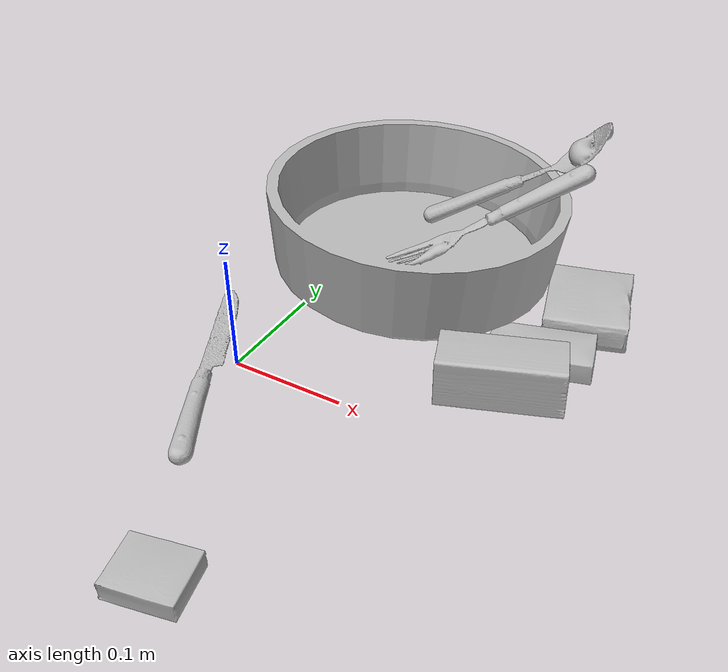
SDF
<sdf version="1.4">
  <world name="default">
    <light name="light1" type="point">
      <pose>0 0 1 0 0 0</pose>
      <diffuse>3 3 3 1</diffuse>
      <specular>3 3 3 1</specular>
    </light>
    <light name="light2" type="point">
      <pose>0 0.5 2 0 0 0</pose>
      <diffuse>1 1 1 1</diffuse>
      <specular>1 1 1 1</specular>
    </light>
    <light name="light3" type="point">
      <pose>0 0.5 2 0 0 0</pose>
      <diffuse>3 3 3 1</diffuse>
      <specular>3 3 3 1</specular>
    </light>
    <scene>
      <ambient>0.7 0.7 0.7</ambient>
    </scene>
    <model name="box11">
      <link name="link_box11">
        <collision name="default">
          <geometry>
            <mesh>
              <uri>model://jenga/collision_meshes/collision.obj</uri>
              <scale>1.0 1.0 1.0</scale>
            </mesh>
          </geometry>
          <surface>
            <friction>
              <ode>
                <mu>0.5</mu>
                <mu2>0.5</mu2>
              </ode>
            </friction>
          <contact>
        <ode>
            <max_vel>0</max_vel>
            <min_depth>0.0001</min_depth>
            <kp>1e8</kp>
        </ode>
    </contact></surface>
        </collision>
        <visual name="default">
          <geometry>
            <mesh>
              <uri>model://jenga/visual_meshes/visual.dae</uri>
              <scale>1.0 1.0 1.0</scale>
            </mesh>
          </geometry>
        </visual>
        <inertial>
          <mass>0.3186844289302826</mass>
          <pose>-2.502855807051674e-07 -0.0001025000965455547 -4.0923401684267446e-05 0.0 -7.34215461761844e-07 0.0</pose>
          <inertia>
            <ixx>8.818771e-05</ixx>
            <iyy>0.0005975576</iyy>
            <izz>0.00063794345</izz>
            <ixy>0</ixy>
            <ixz>0</ixz>
            <iyz>0</iyz>
          </inertia>
        </inertial>
      </link>
      <pose>0.009690363891422749 0.18415893614292145 0.01500546745955944 -0.0001307888473437625 2.116175075673817e-05 -1.3612903926130109</pose>
    </model>
    <model name="box12">
      <link name="link_box12">
        <collision name="default">
          <geometry>
            <mesh>
              <uri>model://pudding_box/collision_meshes/collision.obj</uri>
              <scale>0.5 0.5 0.5</scale>
            </mesh>
          </geometry>
          <surface>
            <friction>
              <ode>
                <mu>0.5</mu>
                <mu2>0.5</mu2>
              </ode>
            </friction>
          <contact>
        <ode>
            <max_vel>0</max_vel>
            <min_depth>0.0001</min_depth>
            <kp>1e8</kp>
        </ode>
    </contact></surface>
        </collision>
        <visual name="default">
          <geometry>
            <mesh>
              <uri>model://pudding_box/visual_meshes/visual.dae</uri>
              <scale>0.5 0.5 0.5</scale>
            </mesh>
          </geometry>
        </visual>
        <inertial>
          <mass>0.030172348022460938</mass>
          <pose>0.00024474109522998333 0.000403394311433658 -0.00025944141088984907 0.005213102256408686 -0.006603800110353006 0.02007982142872578</pose>
          <inertia>
            <ixx>8.527073e-06</ixx>
            <iyy>5.7370744e-06</iyy>
            <izz>1.259245e-05</izz>
            <ixy>0</ixy>
            <ixz>0</ixz>
            <iyz>0</iyz>
          </inertia>
        </inertial>
      </link>
      <pose>0.09222502261400223 -0.207223579287529 0.00986290629953146 0.02234854673073479 -0.011391737818092974 1.7996698148373318</pose>
    </model>
    <model name="box13">
      <link name="link_box13">
        <collision name="default">
          <geometry>
            <mesh>
              <uri>model://sugar_box/collision_meshes/collision.obj</uri>
              <scale>0.5 0.5 0.5</scale>
            </mesh>
          </geometry>
          <surface>
            <friction>
              <ode>
                <mu>0.5</mu>
                <mu2>0.5</mu2>
              </ode>
            </friction>
          <contact>
        <ode>
            <max_vel>0</max_vel>
            <min_depth>0.0001</min_depth>
            <kp>1e8</kp>
        </ode>
    </contact></surface>
        </collision>
        <visual name="default">
          <geometry>
            <mesh>
              <uri>model://sugar_box/visual_meshes/visual.dae</uri>
              <scale>0.5 0.5 0.5</scale>
            </mesh>
          </geometry>
        </visual>
        <inertial>
          <mass>0.12330043315887451</mass>
          <pose>0.0005171863595023751 1.924554817378521e-05 -0.0001818240125430748 -0.0004046263878582698 0.0010506634058618082 0.0026153787888998363</pose>
          <inertia>
            <ixx>2.5683388e-05</ixx>
            <iyy>8.301401e-05</iyy>
            <izz>9.937768e-05</izz>
            <ixy>0</ixy>
            <ixz>0</ixz>
            <iyz>0</iyz>
          </inertia>
        </inertial>
      </link>
      <pose>0.21749897301197052 0.12731444835662842 0.011399256996810436 0.0007949396451594878 -0.0234473924004812 0.25727041372334863</pose>
    </model>
    <model name="box21">
      <link name="link_box21">
        <collision name="default">
          <geometry>
            <mesh>
              <uri>model://wood_block/collision_meshes/collision.obj</uri>
              <scale>0.5 0.5 0.5</scale>
            </mesh>
          </geometry>
          <surface>
            <friction>
              <ode>
                <mu>0.5</mu>
                <mu2>0.5</mu2>
              </ode>
            </friction>
          <contact>
        <ode>
            <max_vel>0</max_vel>
            <min_depth>0.0001</min_depth>
            <kp>1e8</kp>
        </ode>
    </contact></surface>
        </collision>
        <visual name="default">
          <geometry>
            <mesh>
              <uri>model://wood_block/visual_meshes/visual.dae</uri>
              <scale>0.5 0.5 0.5</scale>
            </mesh>
          </geometry>
        </visual>
        <inertial>
          <mass>0.22575385868549347</mass>
          <pose>-2.9066577553749084e-06 -0.00028540470520965755 0.00013204291462898254 -0.05220771918194674 -0.005192696213783058 -0.006861377697513623</pose>
          <inertia>
            <ixx>7.552322e-05</ixx>
            <iyy>0.00023857782</iyy>
            <izz>0.00023768542</izz>
            <ixy>0</ixy>
            <ixz>0</ixz>
            <iyz>0</iyz>
          </inertia>
        </inertial>
      </link>
      <pose>0.20590977370738983 0.07212790101766586 0.022629264742136 -0.005208449956126 0.005718733290940736 0.3632250888786195</pose>
    </model>
    <model name="box22">
      <link name="link_box22">
        <collision name="default">
          <geometry>
            <mesh>
              <uri>model://cracker_box/collision_meshes/collision.obj</uri>
              <scale>0.25 0.25 0.25</scale>
            </mesh>
          </geometry>
          <surface>
            <friction>
              <ode>
                <mu>0.5</mu>
                <mu2>0.5</mu2>
              </ode>
            </friction>
          <contact>
        <ode>
            <max_vel>0</max_vel>
            <min_depth>0.0001</min_depth>
            <kp>1e8</kp>
        </ode>
    </contact></surface>
        </collision>
        <visual name="default">
          <geometry>
            <mesh>
              <uri>model://cracker_box/visual_meshes/visual.dae</uri>
              <scale>0.25 0.25 0.25</scale>
            </mesh>
          </geometry>
        </visual>
        <inertial>
          <mass>0.02141544781625271</mass>
          <pose>0.0002366038243053481 6.358561950037256e-05 -0.00042573839891701937 -0.000316207804917531 -0.011106489600095467 0.0025467954686493135</pose>
          <inertia>
            <ixx>3.4044588e-06</ixx>
            <iyy>5.62143e-06</iyy>
            <izz>8.022297e-06</izz>
            <ixy>0</ixy>
            <ixz>0</ixz>
            <iyz>0</iyz>
          </inertia>
        </inertial>
      </link>
      <pose>0.11161715537309647 0.35161662101745605 0.009096027351915836 -0.014050546074064751 -0.0050166495539887505 3.062116927606034</pose>
    </model>
    <model name="box23">
      <link name="link_box23">
        <collision name="default">
          <geometry>
            <mesh>
              <uri>model://gelatin_box/collision_meshes/collision.obj</uri>
              <scale>1.0 1.0 1.0</scale>
            </mesh>
          </geometry>
          <surface>
            <friction>
              <ode>
                <mu>0.5</mu>
                <mu2>0.5</mu2>
              </ode>
            </friction>
          <contact>
        <ode>
            <max_vel>0</max_vel>
            <min_depth>0.0001</min_depth>
            <kp>1e8</kp>
        </ode>
    </contact></surface>
        </collision>
        <visual name="default">
          <geometry>
            <mesh>
              <uri>model://gelatin_box/visual_meshes/visual.dae</uri>
              <scale>1.0 1.0 1.0</scale>
            </mesh>
          </geometry>
        </visual>
        <inertial>
          <mass>0.2518538236618042</mass>
          <pose>0.00043196187471039593 0.00011156871914863586 -0.0003640321083366871 -0.001050372077086074 -0.00475581729336075 0.01644055760821351</pose>
          <inertia>
            <ixx>0.00017778824</ixx>
            <iyy>0.00012699323</iyy>
            <izz>0.00027063338</izz>
            <ixy>0</ixy>
            <ixz>0</ixz>
            <iyz>0</iyz>
          </inertia>
        </inertial>
      </link>
      <pose>0.23030157387256622 0.2012995183467865 0.015213091857731342 0.0049281386922614 -0.009376481175044535 0.26319241287175626</pose>
    </model>
    <model name="plate1">
      <link name="link_plate1">
        <collision name="default">
          <geometry>
            <mesh>
              <uri>model://pan_tefal/collision_meshes/collision.obj</uri>
              <scale>1.0 1.0 1.0</scale>
            </mesh>
          </geometry>
          <surface>
            <friction>
              <ode>
                <mu>0.5</mu>
                <mu2>0.5</mu2>
              </ode>
            </friction>
          <contact>
        <ode>
            <max_vel>0</max_vel>
            <min_depth>0.0001</min_depth>
            <kp>1e8</kp>
        </ode>
    </contact></surface>
        </collision>
        <visual name="default">
          <geometry>
            <mesh>
              <uri>model://pan_tefal/visual_meshes/visual.dae</uri>
              <scale>1.0 1.0 1.0</scale>
            </mesh>
          </geometry>
        </visual>
        <inertial>
          <mass>1.2783581018447876</mass>
          <pose>-0.0001800234749680385 3.279297015978955e-05 -0.008514934219419956 0.0008190282028794127 -0.0003301398069692291 -0.33185125702417473</pose>
          <inertia>
            <ixx>0.0088244425</ixx>
            <iyy>0.008881334</iyy>
            <izz>0.016244099</izz>
            <ixy>0</ixy>
            <ixz>0</ixz>
            <iyz>0</iyz>
          </inertia>
        </inertial>
      </link>
      <pose>0.07269874215126038 0.17524611949920654 0.06617418676614761 -0.03427082078808917 -0.04855958265617707 -2.253290507384592</pose>
    </model>
    <model name="silverware1">
      <link name="link_silverware1">
        <collision name="default">
          <geometry>
            <mesh>
              <uri>model://knife/collision_meshes/collision.obj</uri>
              <scale>1.0 1.0 1.0</scale>
            </mesh>
          </geometry>
          <surface>
            <friction>
              <ode>
                <mu>0.5</mu>
                <mu2>0.5</mu2>
              </ode>
            </friction>
          <contact>
        <ode>
            <max_vel>0</max_vel>
            <min_depth>0.0001</min_depth>
            <kp>1e8</kp>
        </ode>
    </contact></surface>
        </collision>
        <visual name="default">
          <geometry>
            <mesh>
              <uri>model://knife/visual_meshes/visual.dae</uri>
              <scale>1.0 1.0 1.0</scale>
            </mesh>
          </geometry>
        </visual>
        <inertial>
          <mass>0.028752580285072327</mass>
          <pose>-0.023785240948200226 0.0015275123296305537 5.0620223191799596e-05 0.07306965696526056 0.017248417457013686 -0.00740982691157592</pose>
          <inertia>
            <ixx>8.161146e-07</ixx>
            <iyy>0.000110462766</iyy>
            <izz>0.00011072555</izz>
            <ixy>0</ixy>
            <ixz>0</ixz>
            <iyz>0</iyz>
          </inertia>
        </inertial>
      </link>
      <pose>-0.009488070383667946 -0.02296382375061512 0.007946566678583622 -0.02389222190220899 -0.014543184949271513 2.036897343920784</pose>
    </model>
    <model name="silverware2">
      <link name="link_silverware2">
        <collision name="default">
          <geometry>
            <mesh>
              <uri>model://spoon/collision_meshes/collision.obj</uri>
              <scale>1.0 1.0 1.0</scale>
            </mesh>
          </geometry>
          <surface>
            <friction>
              <ode>
                <mu>0.5</mu>
                <mu2>0.5</mu2>
              </ode>
            </friction>
          <contact>
        <ode>
            <max_vel>0</max_vel>
            <min_depth>0.0001</min_depth>
            <kp>1e8</kp>
        </ode>
    </contact></surface>
        </collision>
        <visual name="default">
          <geometry>
            <mesh>
              <uri>model://spoon/visual_meshes/visual.dae</uri>
              <scale>1.0 1.0 1.0</scale>
            </mesh>
          </geometry>
        </visual>
        <inertial>
          <mass>0.03275385871529579</mass>
          <pose>-0.005526320543140173 -0.0016034176805987954 -0.0007271653157658875 0.03521620701241808 -0.03906583474323888 0.006150609342160928</pose>
          <inertia>
            <ixx>1.8218228e-06</ixx>
            <iyy>0.00012462735</iyy>
            <izz>0.0001255258</izz>
            <ixy>0</ixy>
            <ixz>0</ixz>
            <iyz>0</iyz>
          </inertia>
        </inertial>
      </link>
      <pose>0.13214869797229767 0.2607027292251587 0.08927269279956818 0.10534123950405119 -0.5049784463487031 0.3470290410267323</pose>
    </model>
    <model name="silverware3">
      <link name="link_silverware3">
        <collision name="default">
          <geometry>
            <mesh>
              <uri>model://fork/collision_meshes/collision.obj</uri>
              <scale>1.0 1.0 1.0</scale>
            </mesh>
          </geometry>
          <surface>
            <friction>
              <ode>
                <mu>0.5</mu>
                <mu2>0.5</mu2>
              </ode>
            </friction>
          <contact>
        <ode>
            <max_vel>0</max_vel>
            <min_depth>0.0001</min_depth>
            <kp>1e8</kp>
        </ode>
    </contact></surface>
        </collision>
        <visual name="default">
          <geometry>
            <mesh>
              <uri>model://fork/visual_meshes/visual.dae</uri>
              <scale>1.0 1.0 1.0</scale>
            </mesh>
          </geometry>
        </visual>
        <inertial>
          <mass>0.015051598660647869</mass>
          <pose>-0.029570037499070168 0.00046588244731538 0.0003218861238565296 -0.013550825752082697 -0.010977832944741694 0.014453903400543814</pose>
          <inertia>
            <ixx>5.2764364e-07</ixx>
            <iyy>3.9295395e-05</iyy>
            <izz>3.953141e-05</izz>
            <ixy>0</ixy>
            <ixz>0</ixz>
            <iyz>0</iyz>
          </inertia>
        </inertial>
      </link>
      <pose>0.13388535380363464 0.19969868659973145 0.0757734477519989 -0.032446653704200204 0.45353679940849045 -2.482648097528457</pose>
    </model>
  <physics type="ode">
      <max_contacts>50</max_contacts>
      <ode>
        <solver>
          <type>quick</type>
          <iters>75</iters>
        </solver>
        <constraints>
          <contact_max_correcting_vel>0</contact_max_correcting_vel>
          <contact_surface_layer>0</contact_surface_layer>
        </constraints>
      </ode>
    </physics></world>
</sdf>
